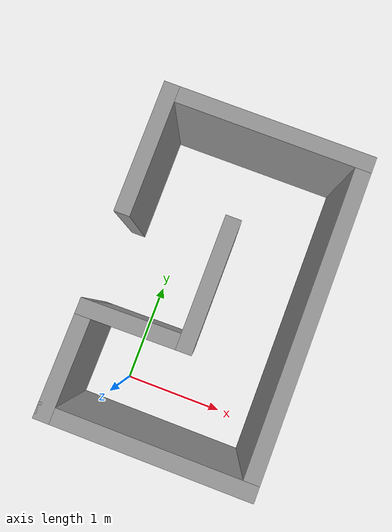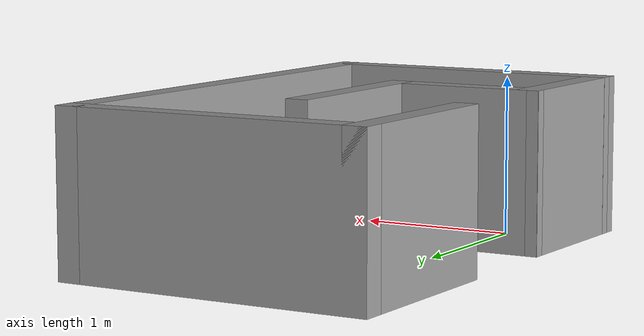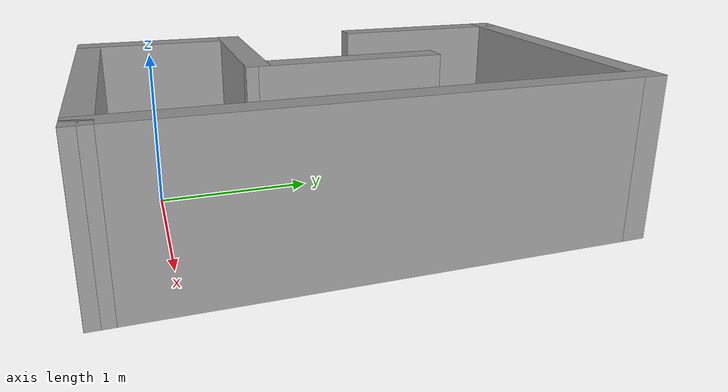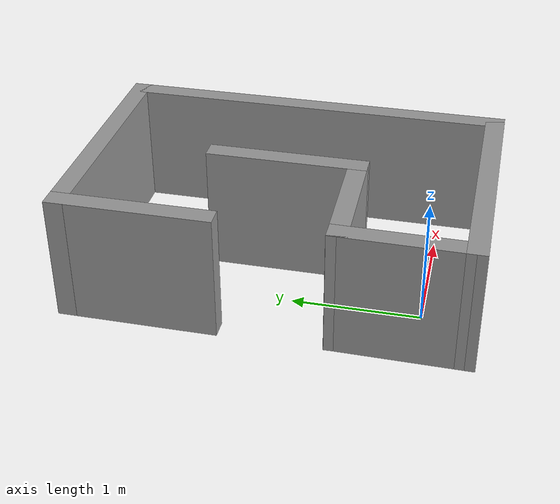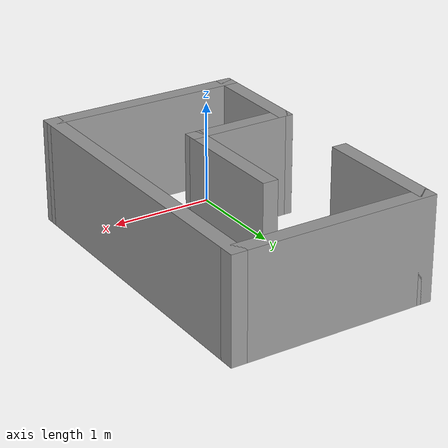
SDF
<sdf version='1.7'>
  <model name='maze_0'>
    <pose>0.464802 1.1248 0 0 -0 0</pose>
    <link name='Wall_0'>
      <collision name='Wall_0_Collision'>
        <geometry>
          <box>
            <size>2 0.15 1</size>
          </box>
        </geometry>
        <pose>0 0 0.5 0 -0 0</pose>
      </collision>
      <visual name='Wall_0_Visual'>
        <pose>0 0 0.5 0 -0 0</pose>
        <geometry>
          <box>
            <size>2 0.15 1</size>
          </box>
        </geometry>
        <material>
          <script>
            <uri>file://media/materials/scripts/gazebo.material</uri>
            <name>Gazebo/Grey</name>
          </script>
          <ambient>1 1 1 1</ambient>
        </material>
        <meta>
          <layer>0</layer>
        </meta>
      </visual>
      <pose>0.000198 -1.4998 0 0 -0 3.13619</pose>
    </link>
    <link name='Wall_12'>
      <collision name='Wall_12_Collision'>
        <geometry>
          <box>
            <size>1.25 0.15 1</size>
          </box>
        </geometry>
        <pose>0 0 0.5 0 -0 0</pose>
      </collision>
      <visual name='Wall_12_Visual'>
        <pose>0 0 0.5 0 -0 0</pose>
        <geometry>
          <box>
            <size>1.25 0.15 1</size>
          </box>
        </geometry>
        <material>
          <script>
            <uri>file://media/materials/scripts/gazebo.material</uri>
            <name>Gazebo/Grey</name>
          </script>
          <ambient>1 1 1 1</ambient>
        </material>
        <meta>
          <layer>0</layer>
        </meta>
      </visual>
      <pose>-0.924802 0.955202 0 0 -0 -1.5708</pose>
    </link>
    <link name='Wall_4'>
      <collision name='Wall_4_Collision'>
        <geometry>
          <box>
            <size>1.10021 0.15 1</size>
          </box>
        </geometry>
        <pose>0 0 0.5 0 -0 0</pose>
      </collision>
      <visual name='Wall_4_Visual'>
        <pose>0 0 0.5 0 -0 0</pose>
        <geometry>
          <box>
            <size>1.10021 0.15 1</size>
          </box>
        </geometry>
        <material>
          <script>
            <uri>file://media/materials/scripts/gazebo.material</uri>
            <name>Gazebo/Grey</name>
          </script>
          <ambient>1 1 1 1</ambient>
        </material>
        <meta>
          <layer>0</layer>
        </meta>
      </visual>
      <pose>-0.919802 -1.0198 0 0 -0 1.56027</pose>
    </link>
    <link name='Wall_5'>
      <collision name='Wall_5_Collision'>
        <geometry>
          <box>
            <size>1.07005 0.15 1</size>
          </box>
        </geometry>
        <pose>0 0 0.5 0 -0 0</pose>
      </collision>
      <visual name='Wall_5_Visual'>
        <pose>0 0 0.5 0 -0 0</pose>
        <geometry>
          <box>
            <size>1.07005 0.15 1</size>
          </box>
        </geometry>
        <material>
          <script>
            <uri>file://media/materials/scripts/gazebo.material</uri>
            <name>Gazebo/Grey</name>
          </script>
          <ambient>1 1 1 1</ambient>
        </material>
        <meta>
          <layer>0</layer>
        </meta>
      </visual>
      <pose>-0.454802 -0.539798 0 0 -0 0.010869</pose>
    </link>
    <link name='Wall_6'>
      <collision name='Wall_6_Collision'>
        <geometry>
          <box>
            <size>1.25 0.15 1</size>
          </box>
        </geometry>
        <pose>0 0 0.5 0 -0 0</pose>
      </collision>
      <visual name='Wall_6_Visual'>
        <pose>0 0 0.5 0 -0 0</pose>
        <geometry>
          <box>
            <size>1.25 0.15 1</size>
          </box>
        </geometry>
        <material>
          <script>
            <uri>file://media/materials/scripts/gazebo.material</uri>
            <name>Gazebo/Grey</name>
          </script>
          <ambient>1 1 1 1</ambient>
        </material>
        <meta>
          <layer>0</layer>
        </meta>
      </visual>
      <pose>0.005198 0.015202 0 0 -0 1.5708</pose>
    </link>
    <link name='Wall_8'>
      <collision name='Wall_8_Collision'>
        <geometry>
          <box>
            <size>3.16 0.15 1</size>
          </box>
        </geometry>
        <pose>0 0 0.5 0 -0 0</pose>
      </collision>
      <visual name='Wall_8_Visual'>
        <pose>0 0 0.5 0 -0 0</pose>
        <geometry>
          <box>
            <size>3.16 0.15 1</size>
          </box>
        </geometry>
        <material>
          <script>
            <uri>file://media/materials/scripts/gazebo.material</uri>
            <name>Gazebo/Grey</name>
          </script>
          <ambient>1 1 1 1</ambient>
        </material>
        <meta>
          <layer>0</layer>
        </meta>
      </visual>
      <pose>0.925198 0.000202 0 0 -0 1.5708</pose>
    </link>
    <link name='Wall_9'>
      <collision name='Wall_9_Collision'>
        <geometry>
          <box>
            <size>2 0.15 1</size>
          </box>
        </geometry>
        <pose>0 0 0.5 0 -0 0</pose>
      </collision>
      <visual name='Wall_9_Visual'>
        <pose>0 0 0.5 0 -0 0</pose>
        <geometry>
          <box>
            <size>2 0.15 1</size>
          </box>
        </geometry>
        <material>
          <script>
            <uri>file://media/materials/scripts/gazebo.material</uri>
            <name>Gazebo/Grey</name>
          </script>
          <ambient>1 1 1 1</ambient>
        </material>
        <meta>
          <layer>0</layer>
        </meta>
      </visual>
      <pose>0.000198 1.5052 0 0 -0 3.14159</pose>
    </link>
    <static>1</static>
  </model>
</sdf>
